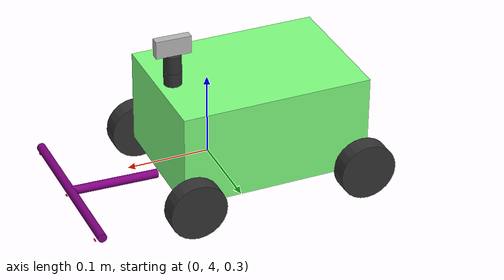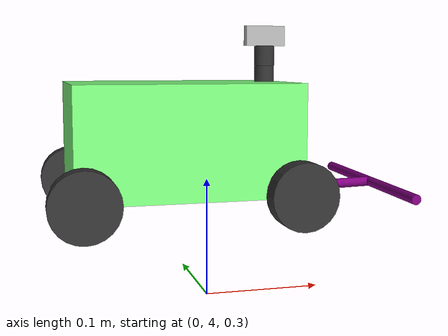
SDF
<?xml version="1.0" ?>
<sdf version="1.6">
<!--Copyright 2016-2022 The FEAGI Authors. All Rights Reserved.-->

<!--Licensed under the Apache License, Version 2.0 (the "License");-->
<!--you may not use this file except in compliance with the License.-->
<!--You may obtain a copy of the License at-->

<!--    http://www.apache.org/licenses/LICENSE-2.0-->

<!--Unless required by applicable law or agreed to in writing, software-->
<!--distributed under the License is distributed on an "AS IS" BASIS,-->
<!--WITHOUT WARRANTIES OR CONDITIONS OF ANY KIND, either express or implied.-->
<!--See the License for the specific language governing permissions and-->
<!--limitations under the License.-->
    <model name='smart_car'>
      <pose>0 4.12 0.325 0 -0 0</pose>
    <!--     BODY PARTS        -->
        <link name='chassis'>
            <pose>0 0 .1 0 0 0</pose>
            <inertial>
              <mass>20</mass>
              <inertia>
                <ixx>0.005</ixx>
                <ixy>0</ixy>
                <ixz>0</ixz>
                <iyy>0.005</iyy>
                <iyz>0</iyz>
                <izz>0.005</izz>
              </inertia>
            </inertial>
            <visual name='visual'>
              <geometry>
                <box>
                  <size>0.2159 0.1524 0.10795</size>
                </box>
              </geometry>
              <material>
                <ambient>0.5 1.0 0.5 1</ambient>
                <diffuse>0.5 1.0 0.5 1</diffuse>
                <specular>0.0 1.0 0.0 1</specular>
              </material>
            </visual>
            <collision name='collision'>
              <geometry>
                <box>
                  <size>0.2159 0.1524 0.10795</size>
                </box>
              </geometry>
            </collision>
              <sensor name="imu" type="imu">
              <always_on>1</always_on>
              <update_rate>100</update_rate>
              <visualize>true</visualize>
              <topic>imu</topic>
              <enable_metrics>true</enable_metrics>
            </sensor>
          </link>

        <link name='rod_one'>
            <pose>0.160 0 0.045 0 -1.6 0</pose>
            <visual name='visual'>
              <geometry>
                <cylinder>
                  <radius>0.005</radius>
                  <length>.1</length>
                </cylinder>
              </geometry>
              <material>
                <ambient>0.8 0.0 0.5 0.0</ambient>
                <diffuse>0.5 0.0 0.5 1</diffuse>
                <specular>0.2 0.3 0.4 0.5</specular>
              </material>
            </visual>
          </link>

        <link name='second_rod'>
            <pose relative_to='rod_one'>0 0 -0.05 -1.6 -1.6 0</pose>
            <visual name='visual'>
              <geometry>
                <cylinder>
                  <radius>0.005</radius>
                  <length>.2</length>
                </cylinder>
              </geometry>
              <material>
                <ambient>0.8 0.0 0.5 0.0</ambient>
                <diffuse>0.5 0.0 0.5 1</diffuse>
                <specular>0.2 0.3 0.4 0.5</specular>
              </material>
            </visual>
          </link>

    <!--        Wheel section   -->

      <link name='rear_left_wheel'>
        <pose>-0.1 0.088 0.05 0 1.5707 1.5707</pose>
      <mass>0.408233</mass>
        <inertial>
        <inertia>
          <ixx>0.003</ixx>
          <iyy>0.003</iyy>
          <izz>0.003</izz>
          <ixy>0</ixy>
          <ixz>0</ixz>
          <iyz>0</iyz>
        </inertia>
      </inertial>
        <visual name='visual'>
          <geometry>
            <cylinder>
              <radius>0.0325</radius>
              <length>.02</length>
            </cylinder>
          </geometry>
          <material>
            <ambient>0.2 0.2 0.2 1</ambient>
            <diffuse>0.2 0.2 0.2 1</diffuse>
            <specular>0.2 0.2 0.2 1</specular>
            <pbr>
                <metal>
                  <albedo_map>material/wheel_cover.png</albedo_map>
                  <normal_map>material/wheel_cover.png</normal_map>
                </metal>
            </pbr>
          </material>
        </visual>
        <collision name='collision'>
          <geometry>
            <cylinder>
              <radius>0.0325</radius>
              <length>.02</length>
            </cylinder>
          </geometry>
          <surface>
            <friction>
            <ode>
              <mu>0.9</mu>
              <mu2>1</mu2>
              <fdir1>1 1 0</fdir1>
              <slip1>0.1</slip1>
              <slip2>0.1</slip2>
            </ode>
            </friction>
          </surface>
        </collision>
      </link>

      <link name='rear_right_wheel'>
        <pose> -0.1 -0.088 0.05 0 1.5707 1.5707 </pose>
      <mass>0.408233</mass>
      <mass>0.408233</mass>
        <inertial>
        <inertia>
          <ixx>0.003</ixx>
          <iyy>0.003</iyy>
          <izz>0.003</izz>
          <ixy>0</ixy>
          <ixz>0</ixz>
          <iyz>0</iyz>
        </inertia>
      </inertial>
        <visual name='visual'>
          <geometry>
            <cylinder>
              <radius>0.0325</radius>
              <length>.02</length>
            </cylinder>
          </geometry>
          <material>
            <ambient>0.2 0.2 0.2 1</ambient>
            <diffuse>0.2 0.2 0.2 1</diffuse>
            <specular>0.2 0.2 0.2 1</specular>
            <pbr>
                <metal>
                  <albedo_map>material/wheel_cover.png</albedo_map>
                  <normal_map>material/wheel_cover.png</normal_map>
                </metal>
            </pbr>
          </material>
        </visual>
        <collision name='collision'>
          <geometry>
            <cylinder>
              <radius>0.0325</radius>
              <length>.02</length>
            </cylinder>
          </geometry>
          <surface>
            <friction>
            <ode>
              <mu>0.9</mu>
              <mu2>1</mu2>
              <fdir1>1 1 0</fdir1>
              <slip1>0.1</slip1>
              <slip2>0.1</slip2>
            </ode>
            </friction>
          </surface>
        </collision>
      </link>

      <link name='front_left_wheel'>
        <pose>0.1 0.088 0.05 0 1.5707 1.5707</pose>
      <mass>0.408233</mass>
      <mass>0.408233</mass>
        <inertial>
        <inertia>
          <ixx>0.003</ixx>
          <iyy>0.003</iyy>
          <izz>0.003</izz>
          <ixy>0</ixy>
          <ixz>0</ixz>
          <iyz>0</iyz>
        </inertia>
      </inertial>
        <visual name='visual'>
          <geometry>
            <cylinder>
              <radius>0.0325</radius>
              <length>.02</length>
            </cylinder>
          </geometry>
          <material>
            <ambient>0.2 0.2 0.2 1</ambient>
            <diffuse>0.2 0.2 0.2 1</diffuse>
            <specular>0.2 0.2 0.2 1</specular>
            <pbr>
                <metal>
                  <albedo_map>material/wheel_cover.png</albedo_map>
                  <normal_map>material/wheel_cover.png</normal_map>
                </metal>
            </pbr>
          </material>
        </visual>
        <collision name='collision'>
          <geometry>
            <cylinder>
              <radius>0.0325</radius>
              <length>.02</length>
            </cylinder>
          </geometry>
          <surface>
            <friction>
            <ode>
              <mu>0.9</mu>
              <mu2>1</mu2>
              <fdir1>1 1 0</fdir1>
              <slip1>0.1</slip1>
              <slip2>0.1</slip2>
            </ode>
            </friction>
          </surface>
        </collision>
      </link>

      <link name='front_right_wheel'>
        <pose>0.1 -0.088 0.05 0 1.5707 1.5707</pose>
      <mass>0.408233</mass>
      <mass>0.408233</mass>
        <inertial>
        <inertia>
          <ixx>0.003</ixx>
          <iyy>0.003</iyy>
          <izz>0.003</izz>
          <ixy>0</ixy>
          <ixz>0</ixz>
          <iyz>0</iyz>
        </inertia>
      </inertial>
        <visual name='visual'>
          <geometry>
             <cylinder>
              <radius>0.0325</radius>
              <length>.02</length>
            </cylinder>
          </geometry>
          <material>
            <ambient>0.2 0.2 0.2 1</ambient>
            <diffuse>0.2 0.2 0.2 1</diffuse>
            <specular>0.2 0.2 0.2 1</specular>
            <pbr>
                <metal>
                  <albedo_map>material/wheel_cover.png</albedo_map>
                  <normal_map>material/wheel_cover.png</normal_map>
                </metal>
            </pbr>
          </material>
        </visual>
        <collision name='collision'>
          <geometry>
            <cylinder>
              <radius>0.0325</radius>
              <length>.02</length>
            </cylinder>
          </geometry>
          <surface>
            <friction>
            <ode>
              <mu>0.9</mu>
              <mu2>1</mu2>
              <fdir1>1 1 0</fdir1>
              <slip1>0.1</slip1>
              <slip2>0.1</slip2>
            </ode>
            </friction>
          </surface>
        </collision>
      </link>

    <!--        Servo section   -->

      <link name='head'>
        <pose>0.090 0 0.16 0 0 0</pose>
        <inertial>
        <mass>0.06442</mass>
        <inertia>
          <ixx>7.4993e-05</ixx>
          <ixy>1.57e-09</ixy>
          <ixz>-1.834e-08</ixz>
          <iyy>7.6e-05</iyy>
          <iyz>-5.295e-08</iyz>
          <izz>5.53373e-06</izz>
        </inertia>
        </inertial>
        <visual name='visual'>
          <geometry>
          <cylinder>
            <radius>0.01</radius>
            <length>0.02</length>
          </cylinder>
          </geometry>
          <material>
            <ambient>0.2 0.2 0.2 1</ambient>
            <diffuse>0.2 0.2 0.2 1</diffuse>
            <specular>0.2 0.2 0.2 1</specular>
          </material>
        </visual>
      <gravity>1</gravity>
      <velocity_decay/>
      <self_collide>0</self_collide>
        <collision name='collision'>
          <geometry>
          <cylinder>
            <radius>0.01</radius>
            <length>0.02</length>
          </cylinder>
          </geometry>
        </collision>
      </link>

      <link name='head2'>
        <pose>0.090 0 0.18 0 0 -1.6</pose>
        <inertial>
          <mass>0.03</mass>
          <inertia>
            <ixx>0.001</ixx>
            <ixy>0</ixy>
            <ixz>0</ixz>
            <iyy>0.001</iyy>
            <iyz>0</iyz>
            <izz>0.001</izz>
          </inertia>
        </inertial>
        <visual name='visual'>
          <geometry>
          <cylinder>
            <radius>0.01</radius>
            <length>0.02</length>
          </cylinder>
          </geometry>
          <material>
            <ambient>0.2 0.2 0.2 1</ambient>
            <diffuse>0.2 0.2 0.2 1</diffuse>
            <specular>0.2 0.2 0.2 1</specular>
          </material>
        </visual>
        <collision name='collision'>
          <geometry>
          <cylinder>
            <radius>0.01</radius>
            <length>0.02</length>
          </cylinder>
          </geometry>
        </collision>
      </link>

    <!--    sensor section   -->

      <link name='sensor'>
      <pose relative_to='head2'>0 0 0.0201 0 -1.55 0</pose>
     <inertial>
          <mass>0.02</mass>
          <inertia>
            <ixx>0.001</ixx>
            <ixy>0</ixy>
            <ixz>0</ixz>
            <iyy>0.001</iyy>
            <iyz>0</iyz>
            <izz>0.001</izz>
          </inertia>
        </inertial>
      <visual name='visual'>
        <pose>0 0 0 0 0 0</pose>
        <geometry>
          <box>
            <size>0.02 0.04 0.01</size>
          </box>
        </geometry>
      </visual>
    <collision name="collision">
        <pose >0 0 0 0 0 0</pose>
        <geometry>
          <box>
            <size>0.02 0.04 0.01</size>
          </box>
        </geometry>
      </collision>
      <frame name="lidar_frame" attached_to='sensor'>
        </frame>
      <sensor name='gpu_lidar' type='gpu_lidar'>
          <always_on>1</always_on>
          <visualize>true</visualize>
          <topic>ultrasonic0</topic>
          <update_rate>100</update_rate>
          <lidar>
              <scan>
                  <vertical>
                    <samples>5</samples>
                    <resolution>1</resolution>
                    <min_angle>0.00</min_angle>
                    <max_angle>0.25</max_angle>
                  </vertical>
              </scan>
          <range>
            <min>0.120000</min>
            <max>4</max>
            <resolution>0.015000</resolution>
          </range>
          <noise>
            <type>gaussian</type>
            <mean>0.0</mean>
            <stddev>0.01</stddev>
          </noise>
        </lidar>
    </sensor>
      <sensor name="rgbd_camera" type="rgbd_camera">
          <update_rate>100</update_rate>
          <visualize>true</visualize>
          <always_on>1</always_on>
          <topic>Camera0</topic>
          <camera>
            <image>
              <width>16</width>
              <height>16</height>
              <format>L_INT8</format>
            </image>
            <clip>
              <near>0.1</near>
              <far>10</far>
            </clip>
            <scale_to_hfov>true</scale_to_hfov>
          </camera>
      </sensor>
    </link>

      <link name='right_IR'>
      <pose>0.215 0.090 0.042 0 1.6 0</pose>
     <inertial>
          <mass>0.01</mass>
          <inertia>
            <ixx>0.126164</ixx>
            <ixy>0</ixy>
            <ixz>0</ixz>
            <iyy>0.416519</iyy>
            <iyz>0</iyz>
            <izz>0.481014</izz>
          </inertia>
        </inertial>
      <visual name='visual'>
        <pose>0 0 0 0 0 0</pose>
        <geometry>
          <box>
            <size>0.001 0.004 0.001</size>
          </box>
        </geometry>
        <material>
            <ambient>1 0 0 1</ambient>
            <diffuse>1 0 0 1</diffuse>
            <specular>0.1 0.1 0.1 1</specular>
            <emissive>0 0 0 0</emissive>
      </material>
      </visual>
      <sensor name="rgbd_camera" type="rgbd_camera">
          <update_rate>100</update_rate>
          <visualize>true</visualize>
          <always_on>1</always_on>
          <topic>IR0</topic>
          <camera>
            <horizontal_fov>0.1</horizontal_fov>
            <image>
              <width>3</width>
              <height>2</height>
              <format>L_INT8</format>
              <anti-aliasing>1</anti-aliasing>
            </image>
            <clip>
              <near>0.02</near>
              <far>10.0</far>
            </clip>
          </camera>
      </sensor>
    </link>

      <link name='left_IR'>
      <pose>0.215 -0.090 0.042 0 1.6 0</pose>
     <inertial>
          <mass>0.01</mass>
          <inertia>
            <ixx>0.126164</ixx>
            <ixy>0</ixy>
            <ixz>0</ixz>
            <iyy>0.416519</iyy>
            <iyz>0</iyz>
            <izz>0.481014</izz>
          </inertia>
        </inertial>
      <visual name='visual'>
        <pose>0 0 0 0 0 0</pose>
        <geometry>
          <box>
            <size>0.001 0.004 0.001</size>
          </box>
        </geometry>
        <material>
            <ambient>1 0 0 1</ambient>
            <diffuse>1 0 0 1</diffuse>
            <specular>0.1 0.1 0.1 1</specular>
            <emissive>0 0 0 0</emissive>
      </material>
      </visual>
        <sensor name="rgbd_camera" type="rgbd_camera">
          <update_rate>100</update_rate>
          <topic>IR2</topic>
          <camera>
            <horizontal_fov>0.1</horizontal_fov>
            <image>
              <width>1</width>
              <height>1</height>
              <format>L_INT8</format>
              <anti-aliasing>1</anti-aliasing>
            </image>
            <clip>
              <near>0.02</near>
              <far>10.0</far>
            </clip>
          </camera>
        </sensor>
    </link>

      <link name='middle_IR'>
      <pose>0.215 0 0.042 0 1.6 0</pose>
     <inertial>
          <mass>0.01</mass>
          <inertia>
            <ixx>0.126164</ixx>
            <ixy>0</ixy>
            <ixz>0</ixz>
            <iyy>0.416519</iyy>
            <iyz>0</iyz>
            <izz>0.481014</izz>
          </inertia>
        </inertial>
      <visual name='visual'>
        <pose>0 0 0 0 0 0</pose>
        <geometry>
          <box>
            <size>0.001 0.004 0.001</size>
          </box>
        </geometry>
        <material>
            <ambient>1 0 0 1</ambient>
            <diffuse>1 0 0 1</diffuse>
            <specular>0.1 0.1 0.1 1</specular>
            <emissive>0 0 0 0</emissive>
      </material>
      </visual>
      <sensor name="rgbd_camera" type="rgbd_camera">
          <update_rate>100</update_rate>
          <topic>IR1</topic>
          <camera>
            <horizontal_fov>0.1</horizontal_fov>
            <image>
              <width>1</width>
              <height>1</height>
              <format>L_INT8</format>
              <anti-aliasing>1</anti-aliasing>
            </image>
            <clip>
              <near>0.02</near>
              <far>10.0</far>
            </clip>
          </camera>
      </sensor>
    </link>

    <!--        Joint section        -->

    <joint name='rear_left_wheel_joint' type='revolute'>
        <parent>chassis</parent>
        <child>rear_left_wheel</child>
        <axis>
          <xyz>0 1 0</xyz>
        <limit>
            <lower>-1.79769e+308</lower>    <!--negative infinity-->
            <upper>1.79769e+308</upper>     <!--positive infinity-->
            <velocity>1</velocity>
        </limit>
        <dynamics>
          <damping>1</damping>
          <friction>1</friction>
          <spring_reference>0</spring_reference>
          <spring_stiffness>0</spring_stiffness>
        </dynamics>
        <use_parent_model_frame>1</use_parent_model_frame>
        </axis>
      <physics>
        <ode>
          <implicit_spring_damper>1</implicit_spring_damper>
          <cfm_damping>1</cfm_damping>
          <limit>
            <cfm>0</cfm>
            <erp>0.2</erp>
          </limit>
        </ode>
      </physics>
      </joint>
      <!--      M2 topic-->
    <plugin
          filename="ignition-gazebo-joint-position-controller-system"
          name="ignition::gazebo::systems::JointPositionController">
          <joint_name>rear_left_wheel_joint</joint_name>
                <topic>M2</topic>
    </plugin>

    <joint name='rear_right_wheel_joint' type='revolute'>
        <parent>chassis</parent>
        <child>rear_right_wheel</child>
        <axis>
          <xyz>0 1 0</xyz>
        <limit>
            <lower>-1.79769e+308</lower>    <!--negative infinity-->
            <upper>1.79769e+308</upper>     <!--positive infinity-->
            <velocity>1</velocity>
        </limit>
        <dynamics>
          <damping>1</damping>
          <friction>1</friction>
          <spring_reference>0</spring_reference>
          <spring_stiffness>0</spring_stiffness>
        </dynamics>
        <use_parent_model_frame>1</use_parent_model_frame>
        </axis>
      <physics>
        <ode>
          <implicit_spring_damper>1</implicit_spring_damper>
          <cfm_damping>1</cfm_damping>
          <limit>
            <cfm>0</cfm>
            <erp>0.2</erp>
          </limit>
        </ode>
      </physics>
      </joint>
      <!--      M3 topic-->
    <plugin
          filename="ignition-gazebo-joint-position-controller-system"
          name="ignition::gazebo::systems::JointPositionController">
          <joint_name>rear_right_wheel_joint</joint_name>
                <topic>M3</topic>
    </plugin>

    <joint name='front_left_wheel_joint' type='revolute'>
        <parent>chassis</parent>
        <child>front_left_wheel</child>
        <axis>
          <xyz>0 1 0</xyz>
        <limit>
            <lower>-1.79769e+308</lower>    <!--negative infinity-->
            <upper>1.79769e+308</upper>     <!--positive infinity-->
            <velocity>1</velocity>
        </limit>
        <dynamics>
          <damping>1</damping>
          <friction>1</friction>
          <spring_reference>0</spring_reference>
          <spring_stiffness>0</spring_stiffness>
        </dynamics>
        <use_parent_model_frame>1</use_parent_model_frame>
        </axis>
      <physics>
        <ode>
          <implicit_spring_damper>1</implicit_spring_damper>
          <cfm_damping>1</cfm_damping>
          <limit>
            <cfm>0</cfm>
            <erp>0.2</erp>
          </limit>
        </ode>
      </physics>
      </joint>
      <!--      M0 topic-->
    <plugin
          filename="ignition-gazebo-joint-position-controller-system"
          name="ignition::gazebo::systems::JointPositionController">
          <joint_name>front_left_wheel_joint</joint_name>
                <topic>M0</topic>
    </plugin>

    <joint name='front_right_wheel_joint' type='revolute'>
        <parent>chassis</parent>
        <child>front_right_wheel</child>
        <axis>
          <xyz>0 1 0</xyz>
        <limit>
            <lower>-1.79769e+308</lower>    <!--negative infinity-->
            <upper>1.79769e+308</upper>     <!--positive infinity-->
            <velocity>1</velocity>
        </limit>
        <dynamics>
          <damping>1</damping>
          <friction>1</friction>
          <spring_reference>0</spring_reference>
          <spring_stiffness>0</spring_stiffness>
        </dynamics>
        <use_parent_model_frame>1</use_parent_model_frame>
        </axis>
      <physics>
        <ode>
          <implicit_spring_damper>1</implicit_spring_damper>
          <cfm_damping>1</cfm_damping>
          <limit>
            <cfm>0</cfm>
            <erp>0.2</erp>
          </limit>
        </ode>
      </physics>
      </joint>
      <!--      M1 topic-->
    <plugin
          filename="ignition-gazebo-joint-position-controller-system"
          name="ignition::gazebo::systems::JointPositionController">
          <joint_name>front_right_wheel_joint</joint_name>
                <topic>M1</topic>
    </plugin>

    <joint name='ultrasonic' type='fixed'>
        <parent>head2</parent>
        <child>sensor</child>
      </joint>

    <joint name='head_attach' type='revolute'>
        <parent>chassis</parent>
        <child>head</child>
        <axis>
          <xyz>0 0 1</xyz>
          <limit>
            <lower>0.1</lower>
            <upper>3.1</upper>
          </limit>
          <dynamics>
          <damping>1</damping>
          <friction>0</friction>
          <spring_reference>0</spring_reference>
          <spring_stiffness>0</spring_stiffness>
        </dynamics>
        <use_parent_model_frame>1</use_parent_model_frame>
        </axis>
      <physics>
        <ode>
          <implicit_spring_damper>1</implicit_spring_damper>
          <cfm_damping>1</cfm_damping>
          <limit>
            <cfm>0</cfm>
            <erp>0.2</erp>
          </limit>
        </ode>
      </physics>
      </joint>
            <!--      S0 topic-->
    <plugin
          filename="ignition-gazebo-joint-position-controller-system"
          name="ignition::gazebo::systems::JointPositionController">
          <joint_name>head_attach</joint_name>
                <topic>S0</topic>
                <p_gain>10</p_gain>
                <i_gain>0.1</i_gain>
                <d_gain>0.01</d_gain>
                <i_max>1</i_max>
                <i_min>-1</i_min>
                <cmd_max>1000</cmd_max>
                <cmd_min>-1000</cmd_min>
    </plugin>

    <joint name='head_attach2' type='revolute'>
    <parent>head</parent>
    <child>head2</child>
    <axis>
      <xyz>1 0 0</xyz>
      <limit>
        <lower>-0.2</lower>
        <upper>1.6</upper>
      </limit>
          <dynamics>
          <damping>1</damping>
          <friction>0</friction>
          <spring_reference>0</spring_reference>
          <spring_stiffness>0</spring_stiffness>
        </dynamics>
        <use_parent_model_frame>1</use_parent_model_frame>
        </axis>
      <physics>
        <ode>
          <implicit_spring_damper>1</implicit_spring_damper>
          <cfm_damping>1</cfm_damping>
          <limit>
            <cfm>0</cfm>
            <erp>0.2</erp>
          </limit>
        </ode>
      </physics>
  </joint>
            <!--      S1 topic-->
      <plugin
          filename="ignition-gazebo-joint-position-controller-system"
          name="ignition::gazebo::systems::JointPositionController">
          <joint_name>head_attach2</joint_name>
                <topic>S1</topic>
                <p_gain>10</p_gain>
                <i_gain>0.1</i_gain>
                <d_gain>0.01</d_gain>
                <i_max>1</i_max>
                <i_min>-1</i_min>
                <cmd_max>1000</cmd_max>
                <cmd_min>-1000</cmd_min>
    </plugin>

  <joint name='rod1' type='fixed'>
    <parent>chassis</parent>
    <child>rod_one</child>
  </joint>

    <joint name='board' type='fixed'>
    <parent>rod_one</parent>
    <child>second_rod</child>
  </joint>

   <joint name='IR_right' type='fixed'>
    <parent>second_rod</parent>
    <child>right_IR</child>
  </joint>

   <joint name='IR_left' type='fixed'>
    <parent>second_rod</parent>
    <child>left_IR</child>
  </joint>

   <joint name='IR_middle' type='fixed'>
    <parent>second_rod</parent>
    <child>middle_IR</child>
  </joint>

    <plugin filename="ignition-gazebo-linearbatteryplugin-system"
        name="ignition::gazebo::systems::LinearBatteryPlugin">
        <!--Li-ion battery spec from LIR18650 datasheet-->
        <battery_name>linear_battery</battery_name>
        <voltage>8.40</voltage>
        <open_circuit_voltage_constant_coef>8.40</open_circuit_voltage_constant_coef>
        <open_circuit_voltage_linear_coef>-2.0</open_circuit_voltage_linear_coef>
        <initial_charge>2.5</initial_charge>
        <capacity>2.5</capacity>
        <resistance>0.07</resistance>
        <smooth_current_tau>2.0</smooth_current_tau>
        <enable_recharge>false</enable_recharge>
        <!-- charging I = c / t, discharging I = P / V,
          charging I should be > discharging I -->
        <!-- Consumer-specific -->
        <power_load>0.2</power_load>
        <start_on_motion>true</start_on_motion>
      </plugin>

  <plugin
      filename="ignition-gazebo-sensors-system"
      name="ignition::gazebo::systems::Sensors">
      <render_engine>ogre2</render_engine>
  </plugin>

  </model>

</sdf>
